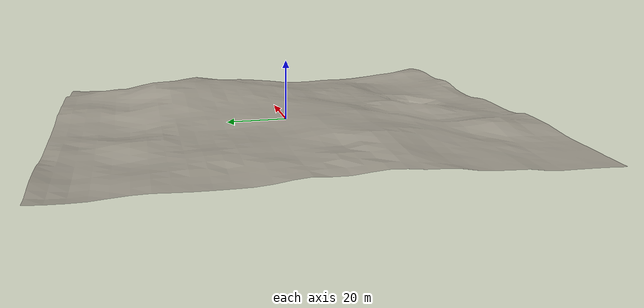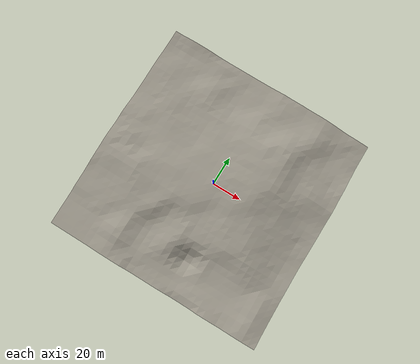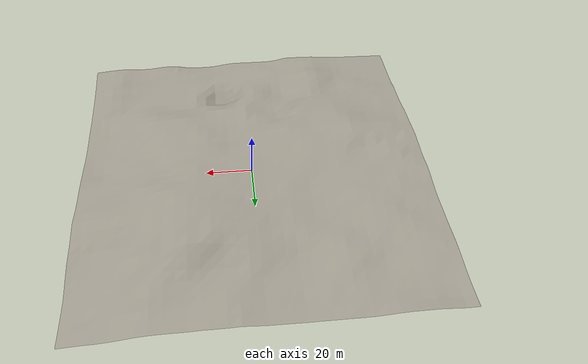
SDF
<?xml version="1.0" ?>
<sdf version="1.9">
  <world name="lunar_mesh_test">
    <physics name="1ms" type="ignored">
      <max_step_size>0.001</max_step_size>
      <real_time_factor>1.0</real_time_factor>
    </physics>

    <plugin filename="gz-sim-physics-system" name="gz::sim::systems::Physics"/>
    <plugin filename="gz-sim-user-commands-system" name="gz::sim::systems::UserCommands"/>
    <plugin filename="gz-sim-scene-broadcaster-system" name="gz::sim::systems::SceneBroadcaster"/>
    <plugin filename="gz-sim-sensors-system" name="gz::sim::systems::Sensors">
      <render_engine>ogre2</render_engine>
    </plugin>
    <plugin filename="gz-sim-imu-system" name="gz::sim::systems::Imu"/>

    <scene>
      <ambient>0.55 0.55 0.55 1</ambient>
      <background>0.02 0.02 0.025 1</background>
      <shadows>true</shadows>
    </scene>

    <light type="directional" name="sun_low_angle">
      <cast_shadows>true</cast_shadows>
      <pose>0 0 30 0.4 0.25 0</pose>
      <diffuse>0.9 0.88 0.82 1</diffuse>
      <specular>0.15 0.15 0.15 1</specular>
      <direction>-0.65 0.25 -0.72</direction>
    </light>

    <model name="lunar_mesh_patch">
      <pose>0 0 -4.000 0 0 0</pose>
      <static>true</static>
      <link name="terrain_link">
        <collision name="terrain_collision">
          <geometry>
            <mesh>
              <uri>file:///mnt/c/Users/Username/OneDrive/Desktop/husky/lunar_world_small_02_tight/lunar_mesh.obj</uri>
            </mesh>
          </geometry>
        </collision>
        <visual name="terrain_visual">
          <geometry>
            <mesh>
              <uri>file:///mnt/c/Users/Username/OneDrive/Desktop/husky/lunar_world_small_02_tight/lunar_mesh.obj</uri>
            </mesh>
          </geometry>
          <material>
            <ambient>0.45 0.43 0.39 1</ambient>
            <diffuse>0.62 0.60 0.55 1</diffuse>
            <specular>0.03 0.03 0.03 1</specular>
          </material>
        </visual>
      </link>
    </model>
  </world>
</sdf>
